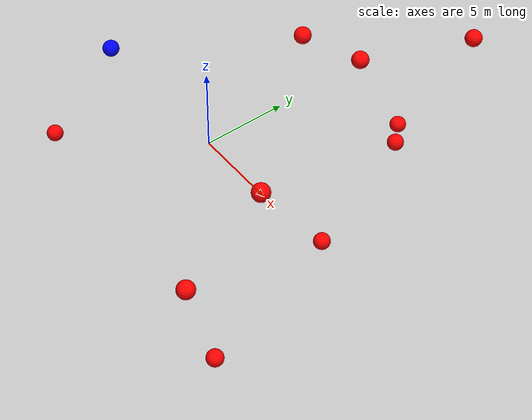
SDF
<?xml version="1.0" ?>
<sdf version="1.8">
    <world name="3d_world">
        <physics name="1ms" type="ode">
            <max_step_size>0.001</max_step_size>
            <real_time_factor>1.0</real_time_factor>
            <real_time_update_rate>1000.0</real_time_update_rate>
        </physics>
        <gravity>0 0 0</gravity>

        <plugin
            filename="gz-sim-physics-system"
            name="gz::sim::v8::systems::Physics">
        </plugin>
        <plugin
            filename="libignition-gazebo-user-commands-system.so"
            name="ignition::gazebo::systems::UserCommands">
        </plugin>
        <plugin
            filename="gz-sim-scene-broadcaster-system"
            name="gz::sim::systems::SceneBroadcaster">
        </plugin>
        <plugin
            filename="gz-sim-sensors-system"
            name="gz::sim::systems::Sensors">
            <render_engine>ogre2</render_engine>
        </plugin>

        <light type="directional" name="sun">
            <cast_shadows>true</cast_shadows>
            <pose>0 0 10 0 0 0</pose>
            <diffuse>0.8 0.8 0.8 1</diffuse>
            <specular>0.2 0.2 0.2 1</specular>
            <attenuation>
                <range>1000</range>
                <constant>0.9</constant>
                <linear>0.01</linear>
                <quadratic>0.001</quadratic>
            </attenuation>
            <direction>-0.5 0.1 -0.9</direction>
        </light>

        <!-- AGENTE -->
        <model name='agente' canonical_link='chassis'>
            <pose relative_to='world'>-10.0 0 0.0 0 0 0</pose>
            <link name='chassis'>
                <pose relative_to='__model__'>0.0 0 0.0 0 0 0</pose>
                <inertial>
                    <mass>1.14395</mass>
                    <inertia>
                        <ixx>0.095329</ixx>
                        <ixy>0</ixy>
                        <ixz>0</ixz>
                        <iyy>0.381317</iyy>
                        <iyz>0</iyz>
                        <izz>0.476646</izz>
                    </inertia>
                </inertial>
                <visual name='visual'>
                    <geometry>
                        <sphere>
                            <radius>0.5</radius>
                        </sphere>
                    </geometry>
                    <material>
                        <ambient>0.0 0.0 1.0 1</ambient>
                        <diffuse>0.0 0.0 1.0 1</diffuse>
                        <specular>0.0 0.0 1.0 1</specular>
                    </material>
                </visual>
                <collision name='collision'>
                    <geometry>
                        <sphere>
                            <radius>0.5</radius>
                        </sphere>
                    </geometry>
                </collision>
                <enable_gravity>false</enable_gravity>
            </link>

            <link name='lidar_link'>
                <pose relative_to='chassis'>0.0 0 0.1 0 0 0</pose>
                <inertial>
                    <mass>0.1</mass>
                    <inertia>
                        <ixx>0.000166667</ixx>
                        <iyy>0.000166667</iyy>
                        <izz>0.000166667</izz>
                    </inertia>
                </inertial>
                <collision name='collision'>
                    <geometry>
                        <cylinder>
                            <radius>0.05</radius>
                            <length>0.1</length>
                        </cylinder>
                    </geometry>
                </collision>
                <visual name='visual'>
                    <geometry>
                        <cylinder>
                            <radius>0.05</radius>
                            <length>0.1</length>
                        </cylinder>
                    </geometry>
                    <material>
                        <ambient>0.0 1.0 0.0 1</ambient>
                        <diffuse>0.0 1.0 0.0 1</diffuse>
                        <specular>0.0 1.0 0.0 1</specular>
                    </material>
                </visual>
                <sensor name="lidar" type="gpu_lidar">
                    <topic>scan</topic>
                    <update_rate>10</update_rate>
                    <lidar>
                        <scan>
                            <horizontal>
                                <samples>5000</samples>
                                <resolution>1</resolution>
                                <min_angle>-3.14159</min_angle>
                                <max_angle>3.14159</max_angle>
                            </horizontal>
                        </scan>
                        <range>
                            <min>0.1</min>
                            <max>10.0</max>
                            <resolution>0.01</resolution>
                        </range>
                    </lidar>
                    <visualize>true</visualize>
                    <always_on>true</always_on>
                    <update_rate>10</update_rate>
                    <pose_frame>lidar</pose_frame>
                </sensor>
                <enable_gravity>false</enable_gravity>
            </link>

            <joint name="lidar_joint" type="fixed">
                <parent>chassis</parent>
                <child>lidar_link</child>
            </joint>

            <plugin
                filename="ignition-gazebo-joint-state-publisher-system"
                name="ignition::gazebo::systems::JointStatePublisher">
            </plugin>
            <plugin
                filename="ignition-gazebo-odometry-publisher-system"
                name="ignition::gazebo::systems::OdometryPublisher">
                <dimensions>3</dimensions>
            </plugin>
            <plugin
                filename="ignition-gazebo-velocity-control-system"
                name="ignition::gazebo::systems::VelocityControl">
                <initial_linear>0.0 0 0</initial_linear>
                <initial_angular>0 0 0.0</initial_angular>
            </plugin>
            <plugin
                filename="libignition-gazebo-pose-publisher-system.so"
                name="ignition::gazebo::systems::PosePublisher">
                <topic>/agente/pose</topic>
                <frame_id>agente</frame_id>
                <update_rate>30</update_rate>
            </plugin>
        </model>

        <!-- OBSTACLE 1 -->
        <model name='obstacle_1' canonical_link='obstacle'>
            <static>false</static>
            <pose relative_to='world'>4.76 15.01 3.13 0 0 0</pose>
            <link name='obstacle'>
                <pose relative_to='__model__'>0.0 0 0.0 0 0 0</pose>
                <visual name='visual'>
                    <geometry>
                        <sphere>
                            <radius>0.50</radius>
                        </sphere>
                    </geometry>
                    <material>
                        <ambient>1.0 0.0 0.0 1</ambient>
                        <diffuse>1.0 0.0 0.0 1</diffuse>
                        <specular>1.0 0.0 0.0 1</specular>
                    </material>
                </visual>
                <collision name='collision'>
                    <geometry>
                        <sphere>
                            <radius>0.50</radius>
                        </sphere>
                    </geometry>
                </collision>
                <enable_gravity>false</enable_gravity>
            </link>

            <plugin
                filename="ignition-gazebo-velocity-control-system"
                name="ignition::gazebo::systems::VelocityControl">
                <initial_linear>-0.97 -1.71 -0.36</initial_linear>
                <initial_angular>0 0 0</initial_angular>
            </plugin>

            <plugin
                filename="ignition-gazebo-odometry-publisher-system"
                name="ignition::gazebo::systems::OdometryPublisher">
                <dimensions>3</dimensions>
            </plugin>
        </model>

        <!-- OBSTACLE 2 -->
        <model name='obstacle_2' canonical_link='obstacle'>
            <static>false</static>
            <pose relative_to='world'>2.89 8.21 3.81 0 0 0</pose>
            <link name='obstacle'>
                <pose relative_to='__model__'>0.0 0 0.0 0 0 0</pose>
                <visual name='visual'>
                    <geometry>
                        <sphere>
                            <radius>0.50</radius>
                        </sphere>
                    </geometry>
                    <material>
                        <ambient>1.0 0.0 0.0 1</ambient>
                        <diffuse>1.0 0.0 0.0 1</diffuse>
                        <specular>1.0 0.0 0.0 1</specular>
                    </material>
                </visual>
                <collision name='collision'>
                    <geometry>
                        <sphere>
                            <radius>0.50</radius>
                        </sphere>
                    </geometry>
                </collision>
                <enable_gravity>false</enable_gravity>
            </link>

            <plugin
                filename="ignition-gazebo-velocity-control-system"
                name="ignition::gazebo::systems::VelocityControl">
                <initial_linear>0.53 -1.26 -0.58</initial_linear>
                <initial_angular>0 0 0</initial_angular>
            </plugin>

            <plugin
                filename="ignition-gazebo-odometry-publisher-system"
                name="ignition::gazebo::systems::OdometryPublisher">
                <dimensions>3</dimensions>
            </plugin>
        </model>

        <!-- OBSTACLE 3 -->
        <model name='obstacle_3' canonical_link='obstacle'>
            <static>false</static>
            <pose relative_to='world'>-9.69 -4.58 -4.10 0 0 0</pose>
            <link name='obstacle'>
                <pose relative_to='__model__'>0.0 0 0.0 0 0 0</pose>
                <visual name='visual'>
                    <geometry>
                        <sphere>
                            <radius>0.50</radius>
                        </sphere>
                    </geometry>
                    <material>
                        <ambient>1.0 0.0 0.0 1</ambient>
                        <diffuse>1.0 0.0 0.0 1</diffuse>
                        <specular>1.0 0.0 0.0 1</specular>
                    </material>
                </visual>
                <collision name='collision'>
                    <geometry>
                        <sphere>
                            <radius>0.50</radius>
                        </sphere>
                    </geometry>
                </collision>
                <enable_gravity>false</enable_gravity>
            </link>

            <plugin
                filename="ignition-gazebo-velocity-control-system"
                name="ignition::gazebo::systems::VelocityControl">
                <initial_linear>1.74 0.73 0.66</initial_linear>
                <initial_angular>0 0 0</initial_angular>
            </plugin>

            <plugin
                filename="ignition-gazebo-odometry-publisher-system"
                name="ignition::gazebo::systems::OdometryPublisher">
                <dimensions>3</dimensions>
            </plugin>
        </model>

        <!-- OBSTACLE 4 -->
        <model name='obstacle_4' canonical_link='obstacle'>
            <static>false</static>
            <pose relative_to='world'>4.02 10.45 -2.99 0 0 0</pose>
            <link name='obstacle'>
                <pose relative_to='__model__'>0.0 0 0.0 0 0 0</pose>
                <visual name='visual'>
                    <geometry>
                        <sphere>
                            <radius>0.50</radius>
                        </sphere>
                    </geometry>
                    <material>
                        <ambient>1.0 0.0 0.0 1</ambient>
                        <diffuse>1.0 0.0 0.0 1</diffuse>
                        <specular>1.0 0.0 0.0 1</specular>
                    </material>
                </visual>
                <collision name='collision'>
                    <geometry>
                        <sphere>
                            <radius>0.50</radius>
                        </sphere>
                    </geometry>
                </collision>
                <enable_gravity>false</enable_gravity>
            </link>

            <plugin
                filename="ignition-gazebo-velocity-control-system"
                name="ignition::gazebo::systems::VelocityControl">
                <initial_linear>0.41 -1.56 0.45</initial_linear>
                <initial_angular>0 0 0</initial_angular>
            </plugin>

            <plugin
                filename="ignition-gazebo-odometry-publisher-system"
                name="ignition::gazebo::systems::OdometryPublisher">
                <dimensions>3</dimensions>
            </plugin>
        </model>

        <!-- OBSTACLE 5 -->
        <model name='obstacle_5' canonical_link='obstacle'>
            <static>false</static>
            <pose relative_to='world'>9.04 -7.77 1.97 0 0 0</pose>
            <link name='obstacle'>
                <pose relative_to='__model__'>0.0 0 0.0 0 0 0</pose>
                <visual name='visual'>
                    <geometry>
                        <sphere>
                            <radius>0.50</radius>
                        </sphere>
                    </geometry>
                    <material>
                        <ambient>1.0 0.0 0.0 1</ambient>
                        <diffuse>1.0 0.0 0.0 1</diffuse>
                        <specular>1.0 0.0 0.0 1</specular>
                    </material>
                </visual>
                <collision name='collision'>
                    <geometry>
                        <sphere>
                            <radius>0.50</radius>
                        </sphere>
                    </geometry>
                </collision>
                <enable_gravity>false</enable_gravity>
            </link>

            <plugin
                filename="ignition-gazebo-velocity-control-system"
                name="ignition::gazebo::systems::VelocityControl">
                <initial_linear>-1.48 1.30 -0.33</initial_linear>
                <initial_angular>0 0 0</initial_angular>
            </plugin>

            <plugin
                filename="ignition-gazebo-odometry-publisher-system"
                name="ignition::gazebo::systems::OdometryPublisher">
                <dimensions>3</dimensions>
            </plugin>
        </model>

        <!-- OBSTACLE 6 -->
        <model name='obstacle_6' canonical_link='obstacle'>
            <static>false</static>
            <pose relative_to='world'>8.27 -2.66 4.87 0 0 0</pose>
            <link name='obstacle'>
                <pose relative_to='__model__'>0.0 0 0.0 0 0 0</pose>
                <visual name='visual'>
                    <geometry>
                        <sphere>
                            <radius>0.50</radius>
                        </sphere>
                    </geometry>
                    <material>
                        <ambient>1.0 0.0 0.0 1</ambient>
                        <diffuse>1.0 0.0 0.0 1</diffuse>
                        <specular>1.0 0.0 0.0 1</specular>
                    </material>
                </visual>
                <collision name='collision'>
                    <geometry>
                        <sphere>
                            <radius>0.50</radius>
                        </sphere>
                    </geometry>
                </collision>
                <enable_gravity>false</enable_gravity>
            </link>

            <plugin
                filename="ignition-gazebo-velocity-control-system"
                name="ignition::gazebo::systems::VelocityControl">
                <initial_linear>-0.70 0.47 -0.85</initial_linear>
                <initial_angular>0 0 0</initial_angular>
            </plugin>

            <plugin
                filename="ignition-gazebo-odometry-publisher-system"
                name="ignition::gazebo::systems::OdometryPublisher">
                <dimensions>3</dimensions>
            </plugin>
        </model>

        <!-- OBSTACLE 7 -->
        <model name='obstacle_7' canonical_link='obstacle'>
            <static>false</static>
            <pose relative_to='world'>-0.98 7.28 3.40 0 0 0</pose>
            <link name='obstacle'>
                <pose relative_to='__model__'>0.0 0 0.0 0 0 0</pose>
                <visual name='visual'>
                    <geometry>
                        <sphere>
                            <radius>0.50</radius>
                        </sphere>
                    </geometry>
                    <material>
                        <ambient>1.0 0.0 0.0 1</ambient>
                        <diffuse>1.0 0.0 0.0 1</diffuse>
                        <specular>1.0 0.0 0.0 1</specular>
                    </material>
                </visual>
                <collision name='collision'>
                    <geometry>
                        <sphere>
                            <radius>0.50</radius>
                        </sphere>
                    </geometry>
                </collision>
                <enable_gravity>false</enable_gravity>
            </link>

            <plugin
                filename="ignition-gazebo-velocity-control-system"
                name="ignition::gazebo::systems::VelocityControl">
                <initial_linear>1.04 -1.18 -0.55</initial_linear>
                <initial_angular>0 0 0</initial_angular>
            </plugin>

            <plugin
                filename="ignition-gazebo-odometry-publisher-system"
                name="ignition::gazebo::systems::OdometryPublisher">
                <dimensions>3</dimensions>
            </plugin>
        </model>

        <!-- OBSTACLE 8 -->
        <model name='obstacle_8' canonical_link='obstacle'>
            <static>false</static>
            <pose relative_to='world'>6.30 3.15 -4.64 0 0 0</pose>
            <link name='obstacle'>
                <pose relative_to='__model__'>0.0 0 0.0 0 0 0</pose>
                <visual name='visual'>
                    <geometry>
                        <sphere>
                            <radius>0.50</radius>
                        </sphere>
                    </geometry>
                    <material>
                        <ambient>1.0 0.0 0.0 1</ambient>
                        <diffuse>1.0 0.0 0.0 1</diffuse>
                        <specular>1.0 0.0 0.0 1</specular>
                    </material>
                </visual>
                <collision name='collision'>
                    <geometry>
                        <sphere>
                            <radius>0.50</radius>
                        </sphere>
                    </geometry>
                </collision>
                <enable_gravity>false</enable_gravity>
            </link>

            <plugin
                filename="ignition-gazebo-velocity-control-system"
                name="ignition::gazebo::systems::VelocityControl">
                <initial_linear>-1.60 -0.67 0.99</initial_linear>
                <initial_angular>0 0 0</initial_angular>
            </plugin>

            <plugin
                filename="ignition-gazebo-odometry-publisher-system"
                name="ignition::gazebo::systems::OdometryPublisher">
                <dimensions>3</dimensions>
            </plugin>
        </model>

        <!-- OBSTACLE 9 -->
        <model name='obstacle_9' canonical_link='obstacle'>
            <static>false</static>
            <pose relative_to='world'>9.07 -6.26 -4.84 0 0 0</pose>
            <link name='obstacle'>
                <pose relative_to='__model__'>0.0 0 0.0 0 0 0</pose>
                <visual name='visual'>
                    <geometry>
                        <sphere>
                            <radius>0.50</radius>
                        </sphere>
                    </geometry>
                    <material>
                        <ambient>1.0 0.0 0.0 1</ambient>
                        <diffuse>1.0 0.0 0.0 1</diffuse>
                        <specular>1.0 0.0 0.0 1</specular>
                    </material>
                </visual>
                <collision name='collision'>
                    <geometry>
                        <sphere>
                            <radius>0.50</radius>
                        </sphere>
                    </geometry>
                </collision>
                <enable_gravity>false</enable_gravity>
            </link>

            <plugin
                filename="ignition-gazebo-velocity-control-system"
                name="ignition::gazebo::systems::VelocityControl">
                <initial_linear>-1.30 1.20 0.93</initial_linear>
                <initial_angular>0 0 0</initial_angular>
            </plugin>

            <plugin
                filename="ignition-gazebo-odometry-publisher-system"
                name="ignition::gazebo::systems::OdometryPublisher">
                <dimensions>3</dimensions>
            </plugin>
        </model>

        <!-- OBSTACLE 10 -->
        <model name='obstacle_10' canonical_link='obstacle'>
            <static>false</static>
            <pose relative_to='world'>1.90 12.64 -4.45 0 0 0</pose>
            <link name='obstacle'>
                <pose relative_to='__model__'>0.0 0 0.0 0 0 0</pose>
                <visual name='visual'>
                    <geometry>
                        <sphere>
                            <radius>0.50</radius>
                        </sphere>
                    </geometry>
                    <material>
                        <ambient>1.0 0.0 0.0 1</ambient>
                        <diffuse>1.0 0.0 0.0 1</diffuse>
                        <specular>1.0 0.0 0.0 1</specular>
                    </material>
                </visual>
                <collision name='collision'>
                    <geometry>
                        <sphere>
                            <radius>0.50</radius>
                        </sphere>
                    </geometry>
                </collision>
                <enable_gravity>false</enable_gravity>
            </link>

            <plugin
                filename="ignition-gazebo-velocity-control-system"
                name="ignition::gazebo::systems::VelocityControl">
                <initial_linear>0.64 -1.79 0.63</initial_linear>
                <initial_angular>0 0 0</initial_angular>
            </plugin>

            <plugin
                filename="ignition-gazebo-odometry-publisher-system"
                name="ignition::gazebo::systems::OdometryPublisher">
                <dimensions>3</dimensions>
            </plugin>
        </model>

    </world>
</sdf>
